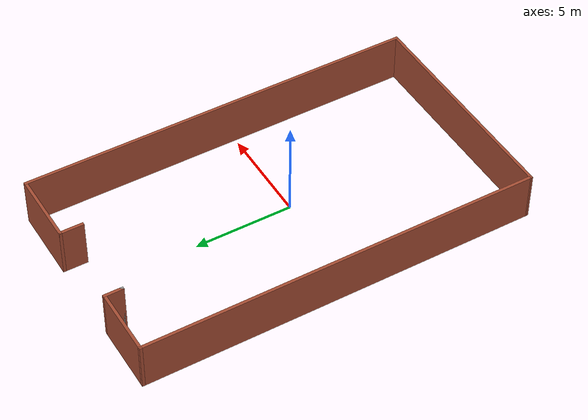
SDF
<?xml version='1.0'?>
<sdf version='1.6'>
  <model name='cafe2'>
    <pose frame=''>-0.326957 0.80003 0 0 -0 0</pose>
    <link name='Wall_1'>
      <collision name='Wall_1_Collision'>
        <geometry>
          <box>
            <size>20.25 0.15 2.5</size>
          </box>
        </geometry>
        <pose frame=''>0 0 1.25 0 -0 0</pose>
      </collision>
      <visual name='Wall_1_Visual'>
        <pose frame=''>0 0 1.25 0 -0 0</pose>
        <geometry>
          <box>
            <size>20.25 0.15 2.5</size>
          </box>
        </geometry>
        <material>
          <script>
            <uri>file://media/materials/scripts/gazebo.material</uri>
            <name>Gazebo/Bricks</name>
          </script>
          <ambient>1 1 1 1</ambient>
        </material>
        <meta>
          <layer>0</layer>
        </meta>
      </visual>
      <pose frame=''>-5.63696 -0.029576 0 0 -0 -1.5708</pose>
    </link>
    <link name='Wall_10'>
      <collision name='Wall_10_Collision'>
        <geometry>
          <box>
            <size>1 0.15 2.5</size>
          </box>
        </geometry>
        <pose frame=''>0 0 1.25 0 -0 0</pose>
      </collision>
      <visual name='Wall_10_Visual'>
        <pose frame=''>0 0 1.25 0 -0 0</pose>
        <geometry>
          <box>
            <size>1 0.15 2.5</size>
          </box>
        </geometry>
        <material>
          <script>
            <uri>file://media/materials/scripts/gazebo.material</uri>
            <name>Gazebo/Bricks</name>
          </script>
          <ambient>1 1 1 1</ambient>
        </material>
        <meta>
          <layer>0</layer>
        </meta>
      </visual>
      <pose frame=''>-2.28696 9.59542 0 0 -0 -1.5708</pose>
    </link>
    <link name='Wall_11'>
      <collision name='Wall_11_Collision'>
        <geometry>
          <box>
            <size>0.15 0.15 2.5</size>
          </box>
        </geometry>
        <pose frame=''>0 0 1.25 0 -0 0</pose>
      </collision>
      <visual name='Wall_11_Visual'>
        <pose frame=''>0 0 1.25 0 -0 0</pose>
        <geometry>
          <box>
            <size>0.15 0.15 2.5</size>
          </box>
        </geometry>
        <material>
          <script>
            <uri>file://media/materials/scripts/gazebo.material</uri>
            <name>Gazebo/Grey</name>
          </script>
          <ambient>1 1 1 1</ambient>
        </material>
        <meta>
          <layer>0</layer>
        </meta>
      </visual>
      <pose frame=''>-2.28696 9.17042 0 0 -0 0</pose>
    </link>
    <link name='Wall_2'>
      <collision name='Wall_2_Collision'>
        <geometry>
          <box>
            <size>11.4241 0.15 2.5</size>
          </box>
        </geometry>
        <pose frame=''>0 0 1.25 0 -0 0</pose>
      </collision>
      <visual name='Wall_2_Visual'>
        <pose frame=''>0 0 1.25 0 -0 0</pose>
        <geometry>
          <box>
            <size>11.4241 0.15 2.5</size>
          </box>
        </geometry>
        <material>
          <script>
            <uri>file://media/materials/scripts/gazebo.material</uri>
            <name>Gazebo/Bricks</name>
          </script>
          <ambient>1 1 1 1</ambient>
        </material>
        <meta>
          <layer>0</layer>
        </meta>
      </visual>
      <pose frame=''>0 -10.0498 0 0 -0 0.005282</pose>
    </link>
    <link name='Wall_3'>
      <collision name='Wall_3_Collision'>
        <geometry>
          <box>
            <size>20.25 0.15 2.5</size>
          </box>
        </geometry>
        <pose frame=''>0 0 1.25 0 -0 0</pose>
      </collision>
      <visual name='Wall_3_Visual'>
        <pose frame=''>0 0 1.25 0 -0 0</pose>
        <geometry>
          <box>
            <size>20.25 0.15 2.5</size>
          </box>
        </geometry>
        <material>
          <script>
            <uri>file://media/materials/scripts/gazebo.material</uri>
            <name>Gazebo/Bricks</name>
          </script>
          <ambient>1 1 1 1</ambient>
        </material>
        <meta>
          <layer>0</layer>
        </meta>
      </visual>
      <pose frame=''>5.63696 0.02997 0 0 -0 1.5708</pose>
    </link>
    <link name='Wall_4'>
      <collision name='Wall_4_Collision'>
        <geometry>
          <box>
            <size>3.75 0.15 2.5</size>
          </box>
        </geometry>
        <pose frame=''>0 0 1.25 0 -0 0</pose>
      </collision>
      <visual name='Wall_4_Visual'>
        <pose frame=''>0 0 1.25 0 -0 0</pose>
        <geometry>
          <box>
            <size>3.75 0.15 2.5</size>
          </box>
        </geometry>
        <material>
          <script>
            <uri>file://media/materials/scripts/gazebo.material</uri>
            <name>Gazebo/Bricks</name>
          </script>
          <ambient>1 1 1 1</ambient>
        </material>
        <meta>
          <layer>0</layer>
        </meta>
      </visual>
      <pose frame=''>3.83696 10.08 0 0 -0 3.14159</pose>
    </link>
    <link name='Wall_5'>
      <collision name='Wall_5_Collision'>
        <geometry>
          <box>
            <size>1.25 0.15 2.5</size>
          </box>
        </geometry>
        <pose frame=''>0 0 1.25 0 -0 0</pose>
      </collision>
      <visual name='Wall_5_Visual'>
        <pose frame=''>0 0 1.25 0 -0 0</pose>
        <geometry>
          <box>
            <size>1.25 0.15 2.5</size>
          </box>
        </geometry>
        <material>
          <script>
            <uri>file://media/materials/scripts/gazebo.material</uri>
            <name>Gazebo/Bricks</name>
          </script>
          <ambient>1 1 1 1</ambient>
        </material>
        <meta>
          <layer>0</layer>
        </meta>
      </visual>
      <pose frame=''>2.03696 9.52997 0 0 -0 -1.5708</pose>
    </link>
    <link name='Wall_9'>
      <collision name='Wall_9_Collision'>
        <geometry>
          <box>
            <size>3.5 0.15 2.5</size>
          </box>
        </geometry>
        <pose frame=''>0 0 1.25 0 -0 0</pose>
      </collision>
      <visual name='Wall_9_Visual'>
        <pose frame=''>0 0 1.25 0 -0 0</pose>
        <geometry>
          <box>
            <size>3.5 0.15 2.5</size>
          </box>
        </geometry>
        <material>
          <script>
            <uri>file://media/materials/scripts/gazebo.material</uri>
            <name>Gazebo/Bricks</name>
          </script>
          <ambient>1 1 1 1</ambient>
        </material>
        <meta>
          <layer>0</layer>
        </meta>
      </visual>
      <pose frame=''>-3.96196 10.0204 0 0 -0 0</pose>
    </link>
    <static>1</static>
  </model>
</sdf>
